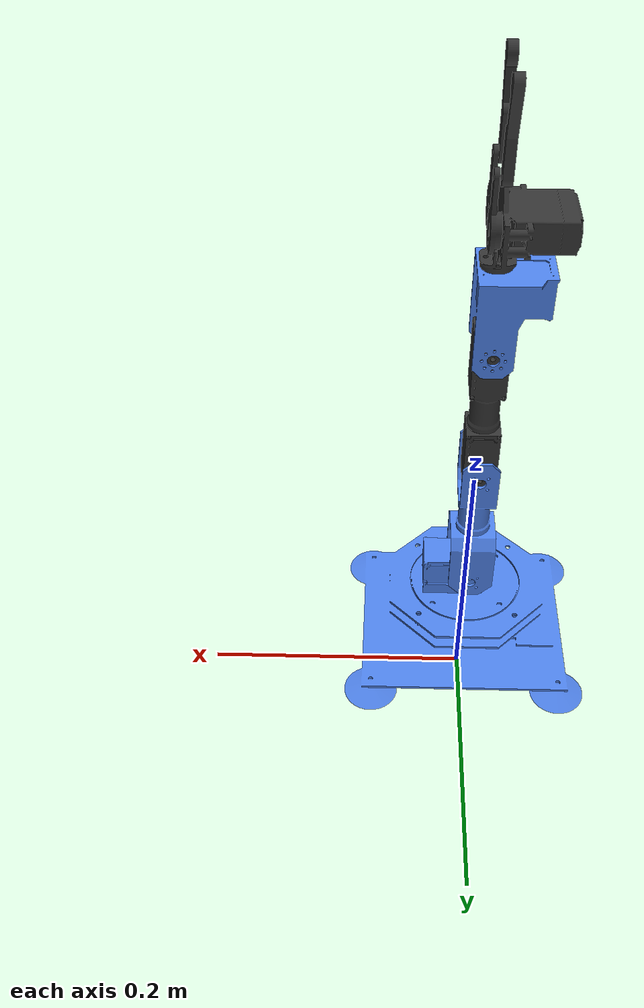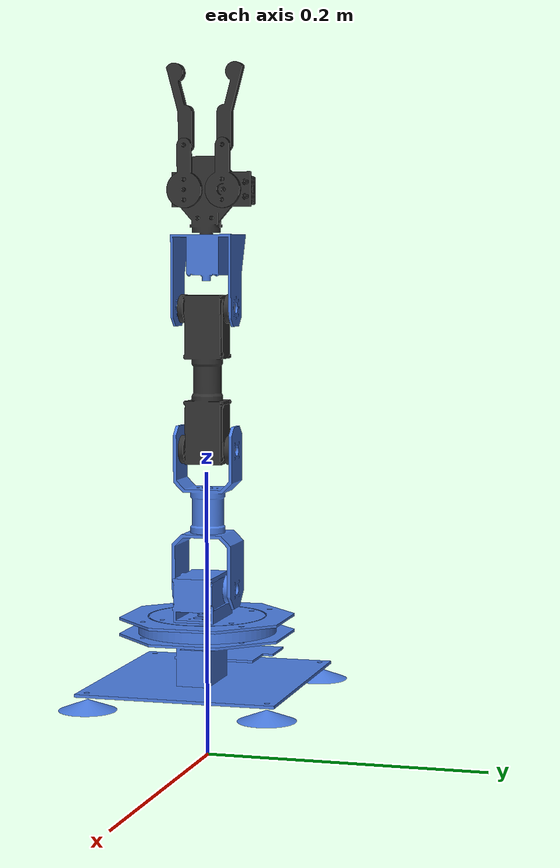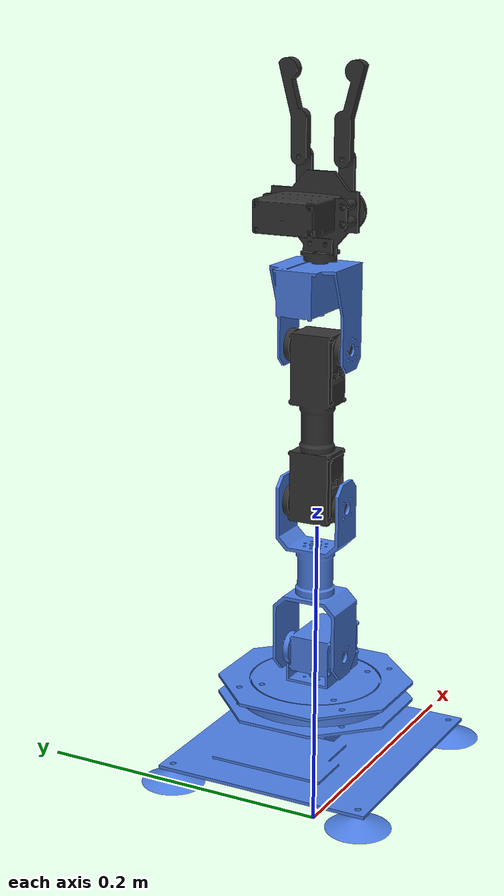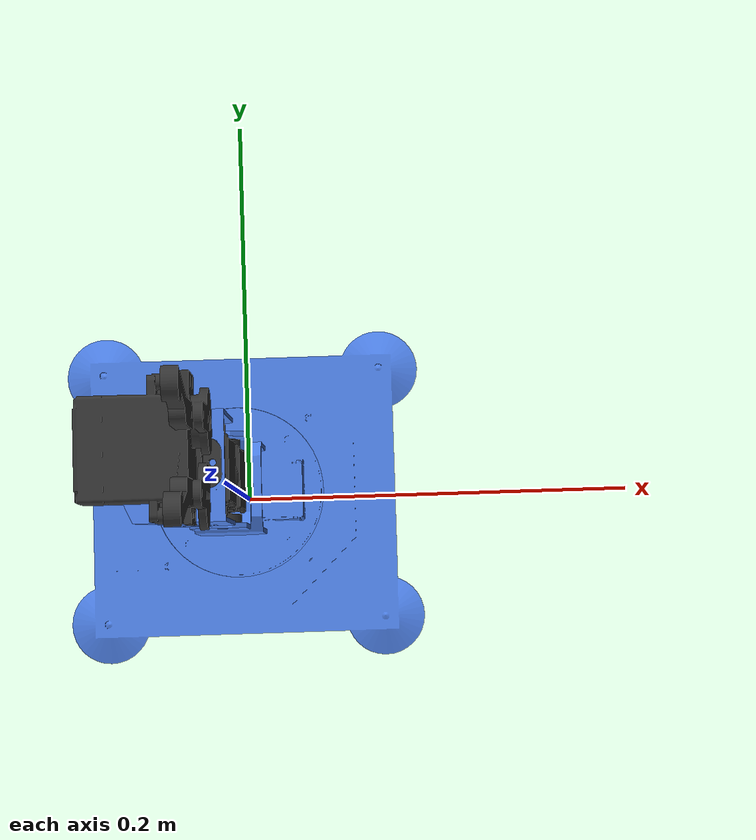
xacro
<?xml version="1.0" ?>

<robot xmlns:xacro="http://www.ros.org/wiki/xacro" name="xarm_1s">
  <material name="black">
    <color rgba="0.2 0.2 0.2 1"/>
  </material>
  <material name="blue">
    <color rgba="0.3 0.5 0.9 1.0"/>
  </material>

  <link name="world"/>

  <joint name="world_joint" type="fixed">
    <parent link="world"/>
    <child link="base_link"/>
    <origin rpy="0.0 0.0 0.0" xyz="0.0 0.0 0.043"/>
  </joint>

  <link name="base_link">
    <visual>
      <origin rpy="0 0 0" xyz="0.0 0.0 0.0" />
      <geometry>
        <mesh filename="package://xarm/meshes/base.stl" scale="1.0 1.0 1.0" />
      </geometry>
      <material name="blue" />
    </visual>
    <collision>
      <origin rpy="0 0 0" xyz="0 0 0" />
      <geometry>
        <mesh filename="package://xarm/meshes/base_collision.stl" scale="1.0 1.0 1.0" />
      </geometry>
    </collision>
  </link>

  <joint name="arm6" type="revolute">
    <limit effort="1000" lower="-2.1" upper="2.1" velocity="1.0" />
    <parent link="base_link"/>
    <child link="link6"/>
    <origin rpy="0.0 0.0 3.14" xyz="0.0 0.0 0.043"/>
    <axis xyz="0 0 -1"/>
  </joint>

  <link name="link6">
    <visual>
      <origin rpy="0 0 0" xyz="0.0 0.0 0.0" />
      <geometry>
        <mesh filename="package://xarm/meshes/link6.stl" scale="1.0 1.0 1.0" />
      </geometry>
      <material name="blue" />
    </visual>
    <collision>
      <origin rpy="0 0 0" xyz="0 0 0" />
      <geometry>
        <mesh filename="package://xarm/meshes/link6_collision.stl" scale="1.0 1.0 1.0" />
      </geometry>
    </collision>
  </link>

  <joint name="arm5" type="revolute">
    <limit effort="1000" lower="-1.5708" upper="1.5708" velocity="1.0" />
    <parent link="link6"/>
    <child link="link5"/>
    <origin rpy="0.0 0.0 0.0" xyz="0.002 0.0 0.032"/>
    <axis xyz="0 1 0"/>
  </joint>

  <link name="link5">
    <visual>
      <origin rpy="0 0 0" xyz="0.0 0.0 0.0" />
      <geometry>
        <mesh filename="package://xarm/meshes/link5.stl" scale="1.0 1.0 1.0" />
      </geometry>
      <material name="blue" />
    </visual>
    <collision>
      <origin rpy="0 0 0" xyz="0 0 0" />
      <geometry>
        <mesh filename="package://xarm/meshes/link5_collision.stl" scale="1.0 1.0 1.0" />
      </geometry>
    </collision>
  </link>

  <joint name="arm4" type="revolute">
    <limit effort="1000" lower="-2.09" upper="2.09" velocity="1.0" />
    <parent link="link5"/>
    <child link="link4"/>
    <origin rpy="0.0 0.0 0.0" xyz="0.0 0.0 0.09775"/>
    <axis xyz="0 -1 0"/>
  </joint>

  <link name="link4">
    <visual>
      <origin rpy="0 0 0" xyz="0.0 0.0 0.0" />
      <geometry>
        <mesh filename="package://xarm/meshes/link4.stl" scale="1.0 1.0 1.0" />
      </geometry>
      <material name="black" />
    </visual>
    <collision>
      <origin rpy="0 0 0" xyz="0 0 0" />
      <geometry>
        <mesh filename="package://xarm/meshes/link4_collision.stl" scale="1.0 1.0 1.0" />
      </geometry>
    </collision>
  </link>

  <joint name="arm3" type="revolute">
    <limit effort="1000" lower="-1.85" upper="2.07" velocity="1.0" />
    <parent link="link4"/>
    <child link="link3"/>
    <origin rpy="0.0 0.0 0.0" xyz="0.0 0.0 0.099"/>
    <axis xyz="0 1 0"/>
  </joint>

  <link name="link3">
    <visual>
      <origin rpy="0 0 0" xyz="0.0 0.0 0.0" />
      <geometry>
        <mesh filename="package://xarm/meshes/link3.stl" scale="1.0 1.0 1.0" />
      </geometry>
      <material name="blue" />
    </visual>
    <collision>
      <origin rpy="0 0 0" xyz="0 0 0" />
      <geometry>
        <mesh filename="package://xarm/meshes/link3_collision.stl" scale="1.0 1.0 1.0" />
      </geometry>
    </collision>
  </link>

  <joint name="arm2" type="revolute">
    <limit effort="1000" lower="-1.95" upper="1.95" velocity="1.0" />
    <parent link="link3"/>
    <child link="link2"/>
    <origin rpy="0.0 0.0 0.0" xyz="-0.00125 0.0 0.050"/>
    <axis xyz="0 0 1"/>
  </joint>

  <link name="link2">
    <visual>
      <origin rpy="0 0 0" xyz="0.0 0.0 0.0" />
      <geometry>
        <mesh filename="package://xarm/meshes/link2.stl" scale="1.0 1.0 1.0" />
      </geometry>
      <material name="black" />
    </visual>
    <collision>
      <origin rpy="0 0 0" xyz="0 0 0" />
      <geometry>
        <mesh filename="package://xarm/meshes/link2_collision.stl" scale="1.0 1.0 1.0" />
      </geometry>
    </collision>
  </link>

  <joint name="arm1" type="revolute">
    <limit effort="1000" lower="-1.8326" upper="1.8326" velocity="1.0" />
    <parent link="link2"/>
    <child link="link1"/>
    <origin xyz="-0.0015 -0.014 0.0315" rpy="0.0 0.0 0.0" />
    <axis xyz="1 0 0"/>
  </joint>

  <link name="link1">
    <visual>
      <origin rpy="0 0 0" xyz="0.0 0.0 0.0" />
      <geometry>
        <mesh filename="package://xarm/meshes/link1.stl" scale="1.0 1.0 1.0" />
      </geometry>
      <material name="black" />
    </visual>
    <collision>
      <origin rpy="0 0 0" xyz="0 0 0" />
      <geometry>
        <mesh filename="package://xarm/meshes/link1_collision.stl" scale="1.0 1.0 1.0" />
      </geometry>
    </collision>
  </link>

  <joint name="arm1_left" type="continuous">
    <parent link="link2"/>
    <child link="link1_left"/>
    <origin xyz="-0.0015 0.014 0.0315" rpy="0.0 0.0 0.0" />
    <axis xyz="1 0 0"/>
    <mimic joint="arm1" multiplier="-1" offset="0" />
  </joint>

  <link name="link1_left">
    <visual>
      <origin rpy="0 0 0" xyz="0.0 0.0 0.0" />
      <geometry>
        <mesh filename="package://xarm/meshes/link1_left.stl" scale="1.0 1.0 1.0" />
      </geometry>
      <material name="black" />
    </visual>
    <collision>
      <origin rpy="0 0 0" xyz="0 0 0" />
      <geometry>
        <mesh filename="package://xarm/meshes/link1_left_collision.stl" scale="1.0 1.0 1.0" />
      </geometry>
    </collision>
  </link>

  <joint name="arm0" type="continuous">
    <parent link="link1"/>
    <child link="link0"/>
    <origin xyz="-0.0023 0.0 0.0305" rpy="0.0 0.0 0.0" />
    <axis xyz="1 0 0"/>
    <mimic joint="arm1" multiplier="-1.01" offset="-0.3" />
  </joint>

  <link name="link0">
    <visual>
      <origin rpy="0 0 0" xyz="0.0 0.0 0.0" />
      <geometry>
        <mesh filename="package://xarm/meshes/link0.stl" scale="1.0 1.0 1.0" />
      </geometry>
      <material name="black" />
    </visual>
    <collision>
      <origin rpy="0 0 0" xyz="0 0 0" />
      <geometry>
        <mesh filename="package://xarm/meshes/link0_collision.stl" scale="1.0 1.0 1.0" />
      </geometry>
    </collision>
  </link>

  <joint name="arm0_left" type="continuous">
    <parent link="link1_left"/>
    <child link="link0_left"/>
    <origin xyz="-0.0023 0.0 0.0305" rpy="0.0 0.0 0.0" />
    <axis xyz="1 0 0"/>
    <mimic joint="arm1" multiplier="1.01" offset="0.3" />
  </joint>

  <link name="link0_left">
    <visual>
      <origin rpy="0 0 0" xyz="0.0 0.0 0.0" />
      <geometry>
        <mesh filename="package://xarm/meshes/link0_left.stl" scale="1.0 1.0 1.0" />
      </geometry>
      <material name="black" />
    </visual>
    <collision>
      <origin rpy="0 0 0" xyz="0 0 0" />
      <geometry>
        <mesh filename="package://xarm/meshes/link0_left_collision.stl" scale="1.0 1.0 1.0" />
      </geometry>
    </collision>
  </link>

  <joint name="tool0_joint" type="fixed">
    <parent link="link2"/>
    <child link="tool0"/>
    <origin rpy="0 0 0" xyz="-0.0038 0.0 0.062"/>
  </joint>
  <link name="tool0"/>

 <ros2_control name="xarm_1s" type="system">
    <hardware>
      <!-- Use topic-based ros2_control plugin -->

      <!-- These params tell the plugin which topics to use -->
      <param name="joint_commands_topic">/xarm/joint_trajectory</param>
      <param name="joint_states_topic">/xarm/joint_states</param>
    </hardware>

    <!-- keep all your joints exactly as they are now -->
    <joint name="arm6">
      <command_interface name="position">
        <param name="min">-2.09439435</param>
        <param name="max">2.09439435</param>
      </command_interface>
      <state_interface name="position"/>
    </joint>

    <joint name="arm5">
      <command_interface name="position">
        <param name="min">-2.09439435</param>
        <param name="max">2.09439435</param>
      </command_interface>
      <state_interface name="position"/>
    </joint>

    <joint name="arm4">
      <command_interface name="position">
        <param name="min">-2.09439435</param>
        <param name="max">2.09439435</param>
      </command_interface>
      <state_interface name="position"/>
    </joint>

    <joint name="arm3">
      <command_interface name="position">
        <param name="min">-2.09439435</param>
        <param name="max">2.09439435</param>
      </command_interface>
      <state_interface name="position"/>
    </joint>

    <joint name="arm2">
      <command_interface name="position">
        <param name="min">-2.09439435</param>
        <param name="max">2.09439435</param>
      </command_interface>
      <state_interface name="position"/>
    </joint>

    <joint name="arm1">
      <command_interface name="position">
        <param name="min">-1.8326</param>
        <param name="max">1.8326</param>
      </command_interface>
      <state_interface name="position"/>
    </joint>
  </ros2_control>

</robot>
